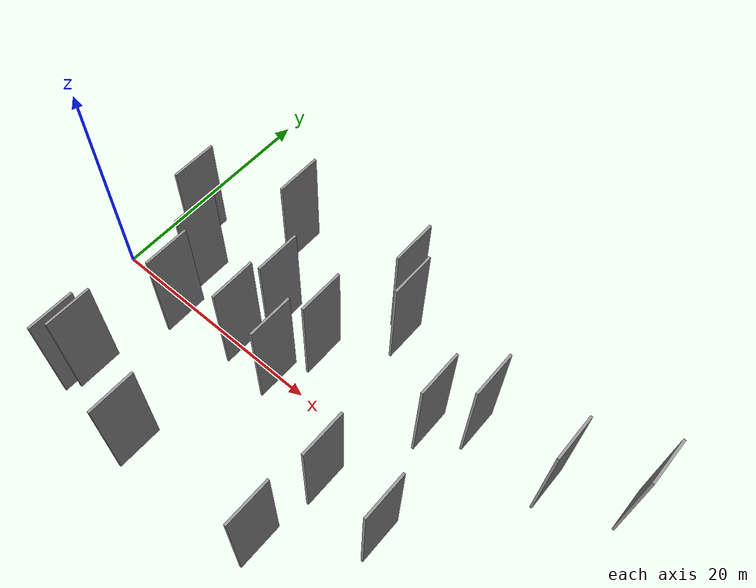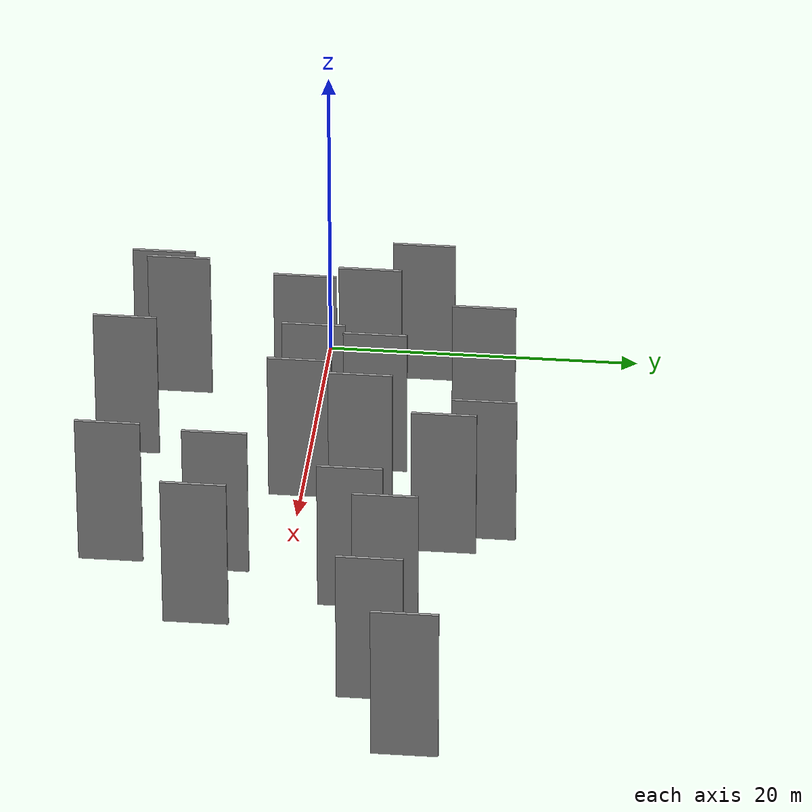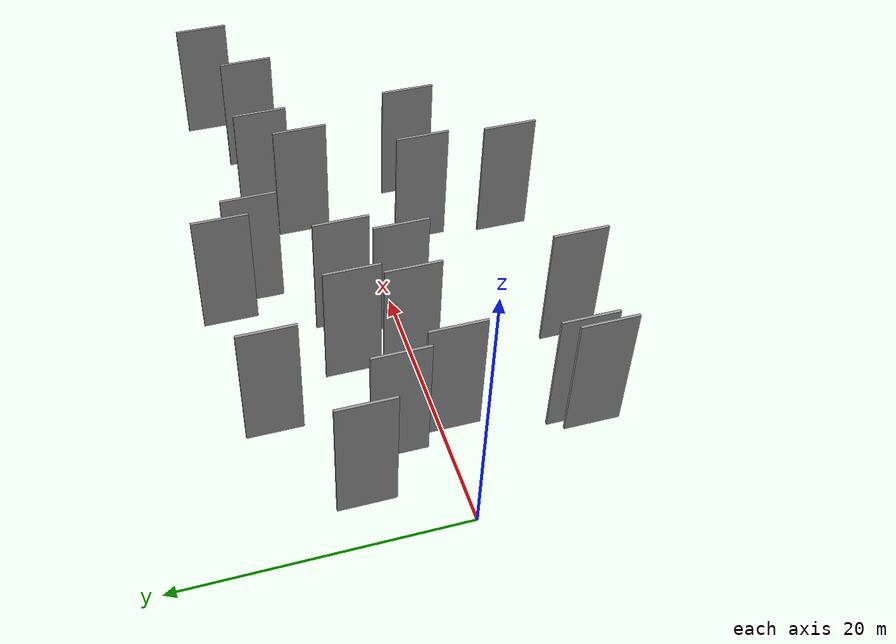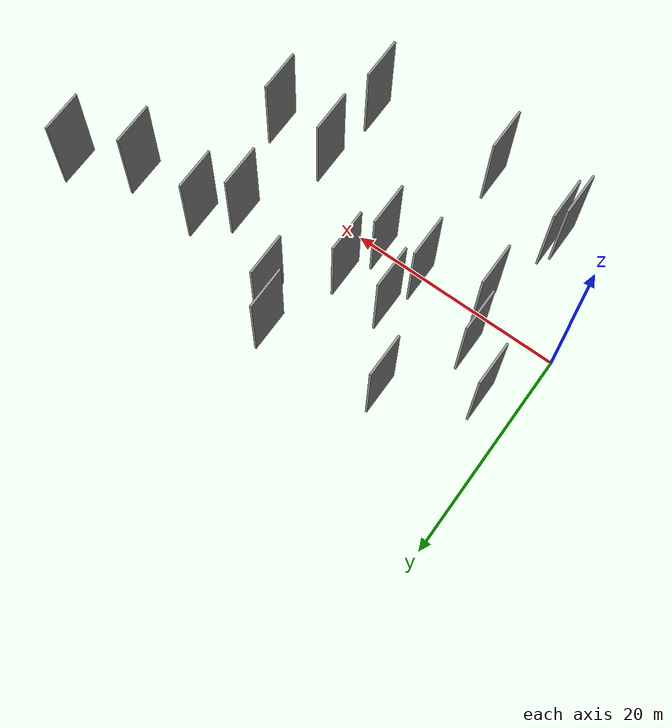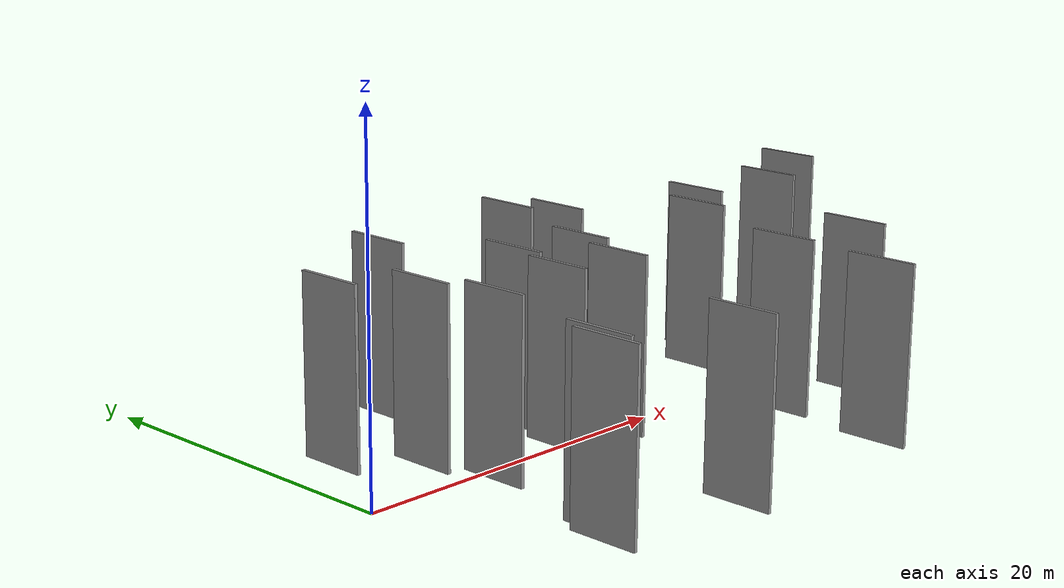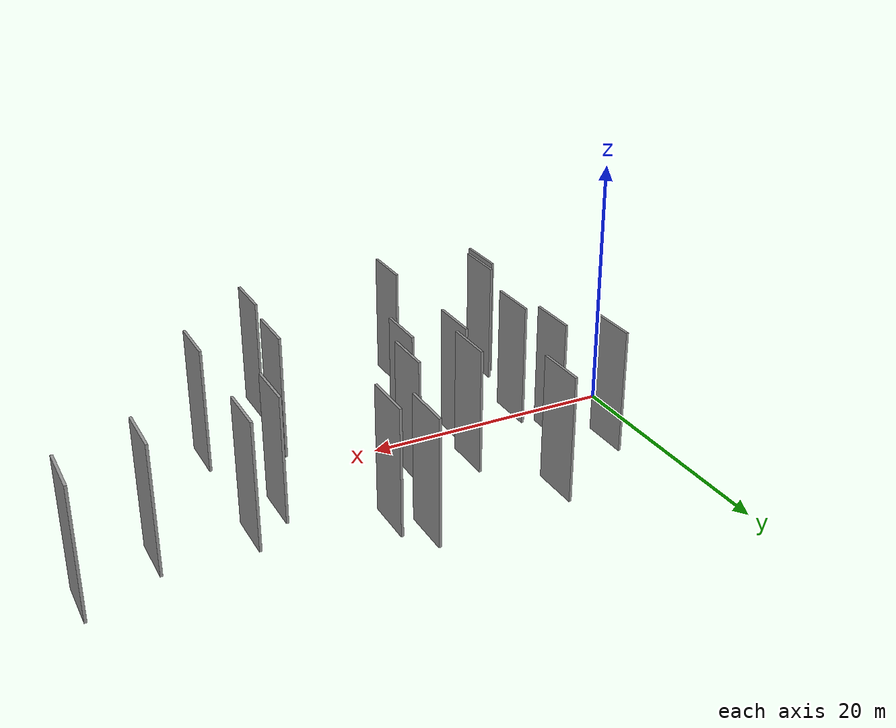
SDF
<sdf version="1.6">
 <world name="default">
  <scene>
   <sky><clouds><speed>12</speed></clouds></sky>
   <ambient>0.4 0.4 0.4 1</ambient>
   <background>0.7 0.7 0.7 1</background>
   <shadows>1</shadows>
  </scene>
  <gravity>0 0 -9.8066</gravity>
  <magnetic_field>6e-06 2.3e-05 -4.2e-05</magnetic_field>
  <physics default="0" name="default_physics" type="ode">
   <ode>
    <solver>
     <type>quick</type>
     <iters>10</iters>
     <sor>1.0</sor>
     <use_dynamic_moi_rescaling>0</use_dynamic_moi_rescaling>
    </solver>
    <constraints>
     <cfm>0</cfm>
     <erp>0.2</erp>
     <contact_max_correcting_vel>100</contact_max_correcting_vel>
     <contact_surface_layer>0.001</contact_surface_layer>
    </constraints>
   </ode>
   <max_step_size>0.004</max_step_size>
   <real_time_factor>1</real_time_factor>
   <real_time_update_rate>250</real_time_update_rate>
  </physics>
  <light name="sun" type="directional">
   <pose>0 0 10 0 0 0</pose>
   <diffuse>0.8 0.8 0.8 1</diffuse>
   <specular>0.2 0.2 0.2 1</specular>
   <attenuation>
    <range>1000</range>
    <constant>0.9</constant>
    <linear>0.01</linear>
    <quadratic>0.001</quadratic>
   </attenuation>
   <direction>-0.5 0.1 -0.9</direction>
  </light>
  <model name="grey_wall_1">
   <static>1</static>
   <pose>3.0790 6.3886 0.0 0.000000 0.000000 1.570796</pose>
   <link name="link">
    <pose>0 0 5.00 0 0 0</pose>
    <collision name="collision"><geometry><box><size>4.00 0.2 10.00</size></box></geometry></collision>
    <visual name="visual">
     <cast_shadows>0</cast_shadows>
     <geometry><box><size>4.00 0.2 10.00</size></box></geometry>
     <material>
      <script>
       <uri>model://grey_wall/materials/scripts</uri>
       <uri>model://grey_wall/materials/textures</uri>
       <name>vrc/grey_wall</name>
      </script>
     </material>
    </visual>
   </link>
  </model>
  <model name="grey_wall_2">
   <static>1</static>
   <pose>21.2935 11.7495 0.0 0.000000 0.000000 1.570796</pose>
   <link name="link">
    <pose>0 0 5.00 0 0 0</pose>
    <collision name="collision"><geometry><box><size>4.00 0.2 10.00</size></box></geometry></collision>
    <visual name="visual">
     <cast_shadows>0</cast_shadows>
     <geometry><box><size>4.00 0.2 10.00</size></box></geometry>
     <material>
      <script>
       <uri>model://grey_wall/materials/scripts</uri>
       <uri>model://grey_wall/materials/textures</uri>
       <name>vrc/grey_wall</name>
      </script>
     </material>
    </visual>
   </link>
  </model>
  <model name="grey_wall_3">
   <static>1</static>
   <pose>6.0209 -9.0118 0.0 0.000000 0.000000 1.570796</pose>
   <link name="link">
    <pose>0 0 5.00 0 0 0</pose>
    <collision name="collision"><geometry><box><size>4.00 0.2 10.00</size></box></geometry></collision>
    <visual name="visual">
     <cast_shadows>0</cast_shadows>
     <geometry><box><size>4.00 0.2 10.00</size></box></geometry>
     <material>
      <script>
       <uri>model://grey_wall/materials/scripts</uri>
       <uri>model://grey_wall/materials/textures</uri>
       <name>vrc/grey_wall</name>
      </script>
     </material>
    </visual>
   </link>
  </model>
  <model name="grey_wall_4">
   <static>1</static>
   <pose>44.6418 9.0534 0.0 0.000000 0.000000 1.570796</pose>
   <link name="link">
    <pose>0 0 5.00 0 0 0</pose>
    <collision name="collision"><geometry><box><size>4.00 0.2 10.00</size></box></geometry></collision>
    <visual name="visual">
     <cast_shadows>0</cast_shadows>
     <geometry><box><size>4.00 0.2 10.00</size></box></geometry>
     <material>
      <script>
       <uri>model://grey_wall/materials/scripts</uri>
       <uri>model://grey_wall/materials/textures</uri>
       <name>vrc/grey_wall</name>
      </script>
     </material>
    </visual>
   </link>
  </model>
  <model name="grey_wall_5">
   <static>1</static>
   <pose>13.3359 0.3821 0.0 0.000000 0.000000 1.570796</pose>
   <link name="link">
    <pose>0 0 5.00 0 0 0</pose>
    <collision name="collision"><geometry><box><size>4.00 0.2 10.00</size></box></geometry></collision>
    <visual name="visual">
     <cast_shadows>0</cast_shadows>
     <geometry><box><size>4.00 0.2 10.00</size></box></geometry>
     <material>
      <script>
       <uri>model://grey_wall/materials/scripts</uri>
       <uri>model://grey_wall/materials/textures</uri>
       <name>vrc/grey_wall</name>
      </script>
     </material>
    </visual>
   </link>
  </model>
  <model name="grey_wall_6">
   <static>1</static>
   <pose>6.3872 3.2544 0.0 0.000000 0.000000 1.570796</pose>
   <link name="link">
    <pose>0 0 5.00 0 0 0</pose>
    <collision name="collision"><geometry><box><size>4.00 0.2 10.00</size></box></geometry></collision>
    <visual name="visual">
     <cast_shadows>0</cast_shadows>
     <geometry><box><size>4.00 0.2 10.00</size></box></geometry>
     <material>
      <script>
       <uri>model://grey_wall/materials/scripts</uri>
       <uri>model://grey_wall/materials/textures</uri>
       <name>vrc/grey_wall</name>
      </script>
     </material>
    </visual>
   </link>
  </model>
  <model name="grey_wall_7">
   <static>1</static>
   <pose>29.4969 4.3070 0.0 0.000000 0.000000 1.570796</pose>
   <link name="link">
    <pose>0 0 5.00 0 0 0</pose>
    <collision name="collision"><geometry><box><size>4.00 0.2 10.00</size></box></geometry></collision>
    <visual name="visual">
     <cast_shadows>0</cast_shadows>
     <geometry><box><size>4.00 0.2 10.00</size></box></geometry>
     <material>
      <script>
       <uri>model://grey_wall/materials/scripts</uri>
       <uri>model://grey_wall/materials/textures</uri>
       <name>vrc/grey_wall</name>
      </script>
     </material>
    </visual>
   </link>
  </model>
  <model name="grey_wall_8">
   <static>1</static>
   <pose>39.1029 6.4484 0.0 0.000000 0.000000 1.570796</pose>
   <link name="link">
    <pose>0 0 5.00 0 0 0</pose>
    <collision name="collision"><geometry><box><size>4.00 0.2 10.00</size></box></geometry></collision>
    <visual name="visual">
     <cast_shadows>0</cast_shadows>
     <geometry><box><size>4.00 0.2 10.00</size></box></geometry>
     <material>
      <script>
       <uri>model://grey_wall/materials/scripts</uri>
       <uri>model://grey_wall/materials/textures</uri>
       <name>vrc/grey_wall</name>
      </script>
     </material>
    </visual>
   </link>
  </model>
  <model name="grey_wall_9">
   <static>1</static>
   <pose>5.3495 -10.0323 0.0 0.000000 0.000000 1.570796</pose>
   <link name="link">
    <pose>0 0 5.00 0 0 0</pose>
    <collision name="collision"><geometry><box><size>4.00 0.2 10.00</size></box></geometry></collision>
    <visual name="visual">
     <cast_shadows>0</cast_shadows>
     <geometry><box><size>4.00 0.2 10.00</size></box></geometry>
     <material>
      <script>
       <uri>model://grey_wall/materials/scripts</uri>
       <uri>model://grey_wall/materials/textures</uri>
       <name>vrc/grey_wall</name>
      </script>
     </material>
    </visual>
   </link>
  </model>
  <model name="grey_wall_10">
   <static>1</static>
   <pose>26.3497 -4.2691 0.0 0.000000 0.000000 1.570796</pose>
   <link name="link">
    <pose>0 0 5.00 0 0 0</pose>
    <collision name="collision"><geometry><box><size>4.00 0.2 10.00</size></box></geometry></collision>
    <visual name="visual">
     <cast_shadows>0</cast_shadows>
     <geometry><box><size>4.00 0.2 10.00</size></box></geometry>
     <material>
      <script>
       <uri>model://grey_wall/materials/scripts</uri>
       <uri>model://grey_wall/materials/textures</uri>
       <name>vrc/grey_wall</name>
      </script>
     </material>
    </visual>
   </link>
  </model>
  <model name="grey_wall_11">
   <static>1</static>
   <pose>13.5085 -11.4642 0.0 0.000000 0.000000 1.570796</pose>
   <link name="link">
    <pose>0 0 5.00 0 0 0</pose>
    <collision name="collision"><geometry><box><size>4.00 0.2 10.00</size></box></geometry></collision>
    <visual name="visual">
     <cast_shadows>0</cast_shadows>
     <geometry><box><size>4.00 0.2 10.00</size></box></geometry>
     <material>
      <script>
       <uri>model://grey_wall/materials/scripts</uri>
       <uri>model://grey_wall/materials/textures</uri>
       <name>vrc/grey_wall</name>
      </script>
     </material>
    </visual>
   </link>
  </model>
  <model name="grey_wall_12">
   <static>1</static>
   <pose>10.3370 10.8229 0.0 0.000000 0.000000 1.570796</pose>
   <link name="link">
    <pose>0 0 5.00 0 0 0</pose>
    <collision name="collision"><geometry><box><size>4.00 0.2 10.00</size></box></geometry></collision>
    <visual name="visual">
     <cast_shadows>0</cast_shadows>
     <geometry><box><size>4.00 0.2 10.00</size></box></geometry>
     <material>
      <script>
       <uri>model://grey_wall/materials/scripts</uri>
       <uri>model://grey_wall/materials/textures</uri>
       <name>vrc/grey_wall</name>
      </script>
     </material>
    </visual>
   </link>
  </model>
  <model name="grey_wall_13">
   <static>1</static>
   <pose>17.5504 -0.0511 0.0 0.000000 0.000000 1.570796</pose>
   <link name="link">
    <pose>0 0 5.00 0 0 0</pose>
    <collision name="collision"><geometry><box><size>4.00 0.2 10.00</size></box></geometry></collision>
    <visual name="visual">
     <cast_shadows>0</cast_shadows>
     <geometry><box><size>4.00 0.2 10.00</size></box></geometry>
     <material>
      <script>
       <uri>model://grey_wall/materials/scripts</uri>
       <uri>model://grey_wall/materials/textures</uri>
       <name>vrc/grey_wall</name>
      </script>
     </material>
    </visual>
   </link>
  </model>
  <model name="grey_wall_14">
   <static>1</static>
   <pose>18.9187 3.8695 0.0 0.000000 0.000000 1.570796</pose>
   <link name="link">
    <pose>0 0 5.00 0 0 0</pose>
    <collision name="collision"><geometry><box><size>4.00 0.2 10.00</size></box></geometry></collision>
    <visual name="visual">
     <cast_shadows>0</cast_shadows>
     <geometry><box><size>4.00 0.2 10.00</size></box></geometry>
     <material>
      <script>
       <uri>model://grey_wall/materials/scripts</uri>
       <uri>model://grey_wall/materials/textures</uri>
       <name>vrc/grey_wall</name>
      </script>
     </material>
    </visual>
   </link>
  </model>
  <model name="grey_wall_15">
   <static>1</static>
   <pose>23.0245 9.4255 0.0 0.000000 0.000000 1.570796</pose>
   <link name="link">
    <pose>0 0 5.00 0 0 0</pose>
    <collision name="collision"><geometry><box><size>4.00 0.2 10.00</size></box></geometry></collision>
    <visual name="visual">
     <cast_shadows>0</cast_shadows>
     <geometry><box><size>4.00 0.2 10.00</size></box></geometry>
     <material>
      <script>
       <uri>model://grey_wall/materials/scripts</uri>
       <uri>model://grey_wall/materials/textures</uri>
       <name>vrc/grey_wall</name>
      </script>
     </material>
    </visual>
   </link>
  </model>
  <model name="grey_wall_16">
   <static>1</static>
   <pose>14.1607 4.3270 0.0 0.000000 0.000000 1.570796</pose>
   <link name="link">
    <pose>0 0 5.00 0 0 0</pose>
    <collision name="collision"><geometry><box><size>4.00 0.2 10.00</size></box></geometry></collision>
    <visual name="visual">
     <cast_shadows>0</cast_shadows>
     <geometry><box><size>4.00 0.2 10.00</size></box></geometry>
     <material>
      <script>
       <uri>model://grey_wall/materials/scripts</uri>
       <uri>model://grey_wall/materials/textures</uri>
       <name>vrc/grey_wall</name>
      </script>
     </material>
    </visual>
   </link>
  </model>
  <model name="grey_wall_17">
   <static>1</static>
   <pose>25.8308 -10.8911 0.0 0.000000 0.000000 1.570796</pose>
   <link name="link">
    <pose>0 0 5.00 0 0 0</pose>
    <collision name="collision"><geometry><box><size>4.00 0.2 10.00</size></box></geometry></collision>
    <visual name="visual">
     <cast_shadows>0</cast_shadows>
     <geometry><box><size>4.00 0.2 10.00</size></box></geometry>
     <material>
      <script>
       <uri>model://grey_wall/materials/scripts</uri>
       <uri>model://grey_wall/materials/textures</uri>
       <name>vrc/grey_wall</name>
      </script>
     </material>
    </visual>
   </link>
  </model>
  <model name="grey_wall_18">
   <static>1</static>
   <pose>32.1624 -4.8403 0.0 0.000000 0.000000 1.570796</pose>
   <link name="link">
    <pose>0 0 5.00 0 0 0</pose>
    <collision name="collision"><geometry><box><size>4.00 0.2 10.00</size></box></geometry></collision>
    <visual name="visual">
     <cast_shadows>0</cast_shadows>
     <geometry><box><size>4.00 0.2 10.00</size></box></geometry>
     <material>
      <script>
       <uri>model://grey_wall/materials/scripts</uri>
       <uri>model://grey_wall/materials/textures</uri>
       <name>vrc/grey_wall</name>
      </script>
     </material>
    </visual>
   </link>
  </model>
  <model name="grey_wall_19">
   <static>1</static>
   <pose>7.5297 -0.7796 0.0 0.000000 0.000000 1.570796</pose>
   <link name="link">
    <pose>0 0 5.00 0 0 0</pose>
    <collision name="collision"><geometry><box><size>4.00 0.2 10.00</size></box></geometry></collision>
    <visual name="visual">
     <cast_shadows>0</cast_shadows>
     <geometry><box><size>4.00 0.2 10.00</size></box></geometry>
     <material>
      <script>
       <uri>model://grey_wall/materials/scripts</uri>
       <uri>model://grey_wall/materials/textures</uri>
       <name>vrc/grey_wall</name>
      </script>
     </material>
    </visual>
   </link>
  </model>
  <model name="grey_wall_20">
   <static>1</static>
   <pose>32.3387 6.7196 0.0 0.000000 0.000000 1.570796</pose>
   <link name="link">
    <pose>0 0 5.00 0 0 0</pose>
    <collision name="collision"><geometry><box><size>4.00 0.2 10.00</size></box></geometry></collision>
    <visual name="visual">
     <cast_shadows>0</cast_shadows>
     <geometry><box><size>4.00 0.2 10.00</size></box></geometry>
     <material>
      <script>
       <uri>model://grey_wall/materials/scripts</uri>
       <uri>model://grey_wall/materials/textures</uri>
       <name>vrc/grey_wall</name>
      </script>
     </material>
    </visual>
   </link>
  </model>
 </world>
</sdf>
